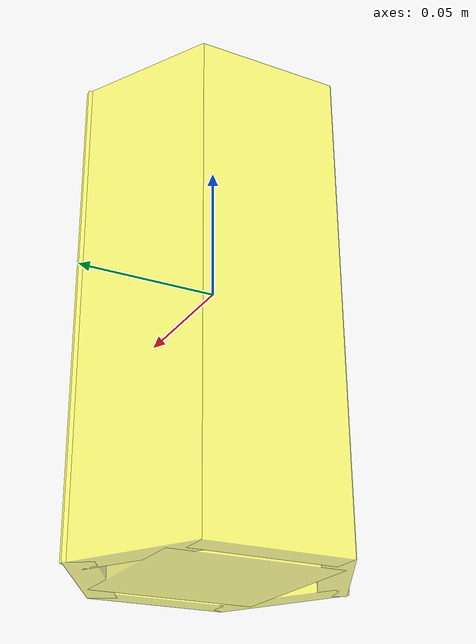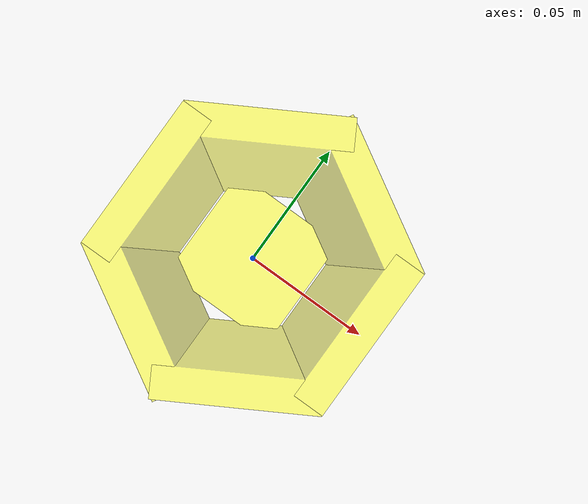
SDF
<?xml version="1.0" ?>
<sdf version="1.5">
  <model name="jar_hollow">
    <link name="link">
      <gravity>true</gravity>
      <inertial>
        <pose>0 0 0 0 0 0</pose>
        <mass>0.1</mass>
        <inertia>
          <ixx>0.00040</ixx>
          <ixy>0</ixy>
          <ixz>0</ixz>
          <iyy>0.00040</iyy>
          <iyz>0</iyz>
          <izz>0.00012</izz>
        </inertia>
      </inertial>
      <collision name="side1">
        <pose>0.037581 0 -0.015 0 0 0</pose>
        <geometry>
          <box><size>0.01 0.05 0.17</size></box>
        </geometry>
        <surface>
          <friction><ode><mu>1.0</mu><mu2>1.0</mu2></ode></friction>
          <contact><ode><kp>10000000.0</kp><kd>1.0</kd><min_depth>0.001</min_depth><max_vel>0.1</max_vel></ode></contact>
        </surface>
      </collision>
      <collision name="side2">
        <pose>-0.037581 0 -0.015 0 0 0</pose>
        <geometry>
          <box><size>0.01 0.05 0.17</size></box>
        </geometry>
        <surface>
          <friction><ode><mu>1.0</mu><mu2>1.0</mu2></ode></friction>
          <contact><ode><kp>10000000.0</kp><kd>1.0</kd><min_depth>0.001</min_depth><max_vel>0.1</max_vel></ode></contact>
        </surface>
      </collision>
      <collision name="side3">
        <pose>0.018437 -0.033383 -0.015 0 0 -1.047166667</pose>
        <geometry>
          <box><size>0.01 0.05 0.17</size></box>
        </geometry>
        <surface>
          <friction><ode><mu>1.0</mu><mu2>1.0</mu2></ode></friction>
          <contact><ode><kp>10000000.0</kp><kd>1.0</kd><min_depth>0.001</min_depth><max_vel>0.1</max_vel></ode></contact>
        </surface>
      </collision>
      <collision name="side4">
        <pose>-0.018437 0.033383 -0.015 0 0 -1.047166667</pose>
        <geometry>
          <box><size>0.01 0.05 0.17</size></box>
        </geometry>
        <surface>
          <friction><ode><mu>1.0</mu><mu2>1.0</mu2></ode></friction>
          <contact><ode><kp>10000000.0</kp><kd>1.0</kd><min_depth>0.001</min_depth><max_vel>0.1</max_vel></ode></contact>
        </surface>
      </collision>
      <collision name="side5">
        <pose>-0.018437 -0.033383 -0.015 0 0 1.047166667</pose>
        <geometry>
          <box><size>0.01 0.05 0.17</size></box>
        </geometry>
        <surface>
          <friction><ode><mu>1.0</mu><mu2>1.0</mu2></ode></friction>
          <contact><ode><kp>10000000.0</kp><kd>1.0</kd><min_depth>0.001</min_depth><max_vel>0.1</max_vel></ode></contact>
        </surface>
      </collision>
      <collision name="side6">
        <pose>0.018437 0.033383 -0.015 0 0 1.047166667</pose>
        <geometry>
          <box><size>0.01 0.05 0.17</size></box>
        </geometry>
        <surface>
          <friction><ode><mu>1.0</mu><mu2>1.0</mu2></ode></friction>
          <contact><ode><kp>10000000.0</kp><kd>1.0</kd><min_depth>0.001</min_depth><max_vel>0.1</max_vel></ode></contact>
        </surface>
      </collision>
      <collision name="bottom">
        <pose>0 0 -0.09 0 0 0</pose>
        <geometry>
          <box><size>0.06 0.06 0.02</size></box>
        </geometry>
        <surface>
          <friction><ode><mu>1.0</mu><mu2>1.0</mu2></ode></friction>
          <contact><ode><kp>10000000.0</kp><kd>1.0</kd><min_depth>0.001</min_depth><max_vel>0.1</max_vel></ode></contact>
        </surface>
      </collision>

      <visual name="side1">
        <pose>0.037581 0 -0.015 0 0 0</pose>
        <geometry>
          <box><size>0.01 0.05 0.17</size></box>
        </geometry>
        <material>
          <diffuse>1 1 0 0.5</diffuse>
        </material>
      </visual>
      <visual name="side2">
        <pose>-0.037581 0 -0.015 0 0 0</pose>
        <geometry>
          <box><size>0.01 0.05 0.17</size></box>
        </geometry>
        <material>
          <diffuse>1 1 0 0.5</diffuse>
        </material>
      </visual>
      <visual name="side3">
        <pose>0.018437 -0.033383 -0.015 0 0 -1.047166667</pose>
        <geometry>
          <box><size>0.01 0.05 0.17</size></box>
        </geometry>
        <material>
          <diffuse>1 1 0 0.5</diffuse>
        </material>
      </visual>
      <visual name="side4">
        <pose>-0.018437 0.033383 -0.015 0 0 -1.047166667</pose>
        <geometry>
          <box><size>0.01 0.05 0.17</size></box>
        </geometry>
        <material>
          <diffuse>1 1 0 0.5</diffuse>
        </material>
      </visual>
      <visual name="side5">
        <pose>-0.018437 -0.033383 -0.015 0 0 1.047166667</pose>
        <geometry>
          <box><size>0.01 0.05 0.17</size></box>
        </geometry>
        <material>
          <diffuse>1 1 0 0.5</diffuse>
        </material>
      </visual>
      <visual name="side6">
        <pose>0.018437 0.033383 -0.015 0 0 1.047166667</pose>
        <geometry>
          <box><size>0.01 0.05 0.17</size></box>
        </geometry>
        <material>
          <diffuse>1 1 0 0.5</diffuse>
        </material>
      </visual>
      <visual name="bottom">
        <pose>0 0 -0.09 0 0 0</pose>
        <geometry>
          <box><size>0.06 0.06 0.02</size></box>
        </geometry>
        <material>
          <diffuse>1 1 0 0.5</diffuse>
        </material>
      </visual>

    </link>

    <joint name="cap_hinge" type="revolute">
      <parent>link</parent>
      <child>hidden_cap</child>
      <axis>
        <xyz>1 0 0</xyz>
        <limit>
          <lower>-1.57</lower>
          <upper>0</upper>
        </limit>
        <dynamics>
          <friction>1</friction>
        </dynamics>
      </axis>
      <pose>0 -0.035 0.07 0 0 0</pose>
    </joint>

    <link name="hidden_cap">
      <gravity>false</gravity>
      <inertial>
        <pose frame=''>0 0 0.07 0 0 0</pose>
        <mass>0.02</mass>
        <inertia>
          <ixx>0.00015</ixx>
          <ixy>0</ixy>
          <ixz>0</ixz>
          <iyy>0.00015</iyy>
          <iyz>0</iyz>
          <izz>0.00003</izz>
        </inertia>
      </inertial>
      <collision name="collision1">
        <pose frame=''>0 0 0.07 0 0 0</pose>
        <geometry>
          <box>
            <size>0.05 0.05 0.006</size>
          </box>
        </geometry>
        <surface>
          <friction>
            <ode>
              <mu>1.0</mu>
              <mu2>1.0</mu2>
            </ode>
          </friction>
          <contact>
            <ode>
              <kp>10000000.0</kp>
              <kd>1.0</kd>
              <min_depth>0.001</min_depth>
              <max_vel>0.1</max_vel>
            </ode>
          </contact>
        </surface>
      </collision>
      <!-- This link should not be visible -->

    </link>

  </model>
</sdf>
